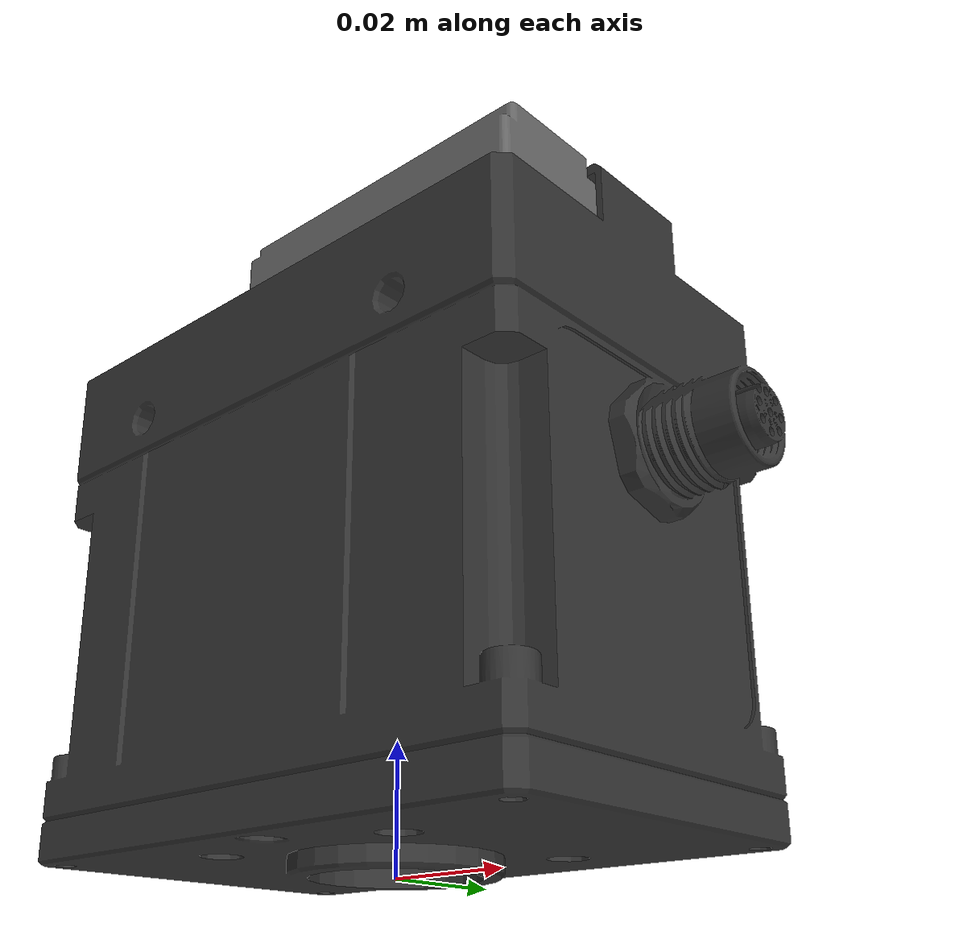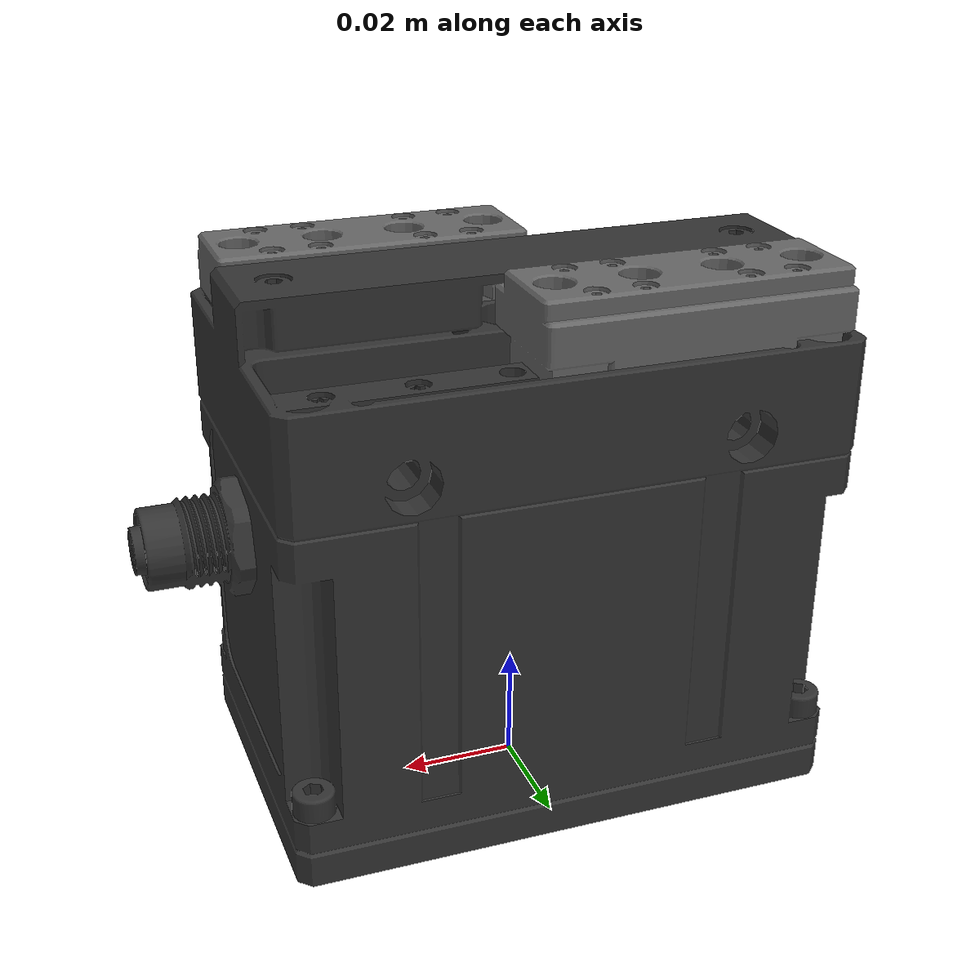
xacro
<?xml version="1.0"?>
<!--
This file shows how to import, instanciate and connect the sensor model to a given link
-->
<robot name="pgi140_example" xmlns:xacro="http://ros.org/wiki/xacro">
  <!--Import macro for left arm gripper-->
  <xacro:include filename="$(find pgi140)/urdf/pgi140.urdf.xacro" />

  <!--Base frame for reference-->
  <link name="world" />

  <xacro:pgi140 parent="world" prefix="">
		<origin xyz="0 0 0" rpy="0 0 0"/>
	</xacro:pgi140>

</robot>

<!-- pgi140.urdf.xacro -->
<robot xmlns:xacro="http://ros.org/wiki/xacro" name="pgi140">
    <xacro:macro name="pgi140" params="parent prefix *origin">

        <!-- joint connct to robot -->
        <joint name="${prefix}pgi_fix" type="fixed">
                <xacro:insert_block name="origin" />
                <parent link="${parent}" />
                <child link="${prefix}origin_link" />
        </joint>

        <!-- gripper body -->
        <link name="${prefix}origin_link">
            <inertial>
                <origin xyz="-0.00015465 -2.2241E-05 0.043187" rpy="0 0 0" />
                <mass value="0.44125" />
                <inertia ixx="0.00018709" ixy="-5.2073E-13" ixz="2.8571E-07" iyy="0.00037837" iyz="-1.6755E-08" izz="0.00044482" />
            </inertial>
            <visual>
                <origin xyz="0 0 0" rpy="0 0 0" />
                <geometry>
                    <mesh filename="package://pgi140/meshes/origin_link.STL" />
                </geometry>
                <material name="PGI_Black">
                    <color rgba="0.2 0.2 0.2 1.0" />
                </material>
            </visual>
            <collision>
                <origin xyz="0 0 0" rpy="0 0 0" />
                <geometry>
                    <mesh filename="package://pgi140/meshes/origin_link.STL" />
                </geometry>
            </collision>
        </link>

        <!-- gripper finger1 -->
        <link name="${prefix}finger1_link">
            <inertial>
                <origin xyz="-0.021 -4.1135E-05 -0.0077742" rpy="0 0 0" />
                <mass value="0.01357" />
                <inertia ixx="5.6166E-07" ixy="-8.7508E-14" ixz="-1.278E-13" iyy="2.3543E-06" iyz="8.019E-09" izz="2.7234E-06" />
            </inertial>
            <visual>
                <origin xyz="0 0 0" rpy="0 0 0" />
                <geometry>
                    <mesh filename="package://pgi140/meshes/finger1_link.STL" />
                </geometry>
                <material name="DH_Gray">
                    <color rgba="0.4 0.4 0.4 1.0" />
                </material>
            </visual>
            <collision>
                <origin xyz="0 0 0" rpy="0 0 0" />
                <geometry>
                    <mesh filename="package://pgi140/meshes/finger1_link.STL" />
                </geometry>
            </collision>
        </link>
        <joint name="${prefix}finger1" type="fixed">
            <origin xyz="-0.001 -0.01815 0.0955" rpy="0 0 3.1416" />
            <parent link="${prefix}origin_link" />
            <child link="${prefix}finger1_link" />
            <axis xyz="1 0 0" />
        </joint>

        <!-- gripper finger2 -->
        <link name="${prefix}finger2_link">
            <inertial>
                <origin xyz="-0.021 -4.1135E-05 -0.0077742" rpy="0 0 0" />
                <mass value="0.01357" />
                <inertia ixx="5.6166E-07" ixy="-8.7508E-14" ixz="-1.278E-13" iyy="2.3543E-06" iyz="8.019E-09" izz="2.7234E-06" />
            </inertial>
            <visual>
                <origin xyz="0 0 0" rpy="0 0 0" />
                <geometry>
                    <mesh filename="package://pgi140/meshes/finger2_link.STL" />
                </geometry>
                <material name="DH_Gray">
                </material>
            </visual>
            <collision>
                <origin xyz="0 0 0" rpy="0 0 0" />
                <geometry>
                    <mesh filename="package://pgi140/meshes/finger2_link.STL" />
                </geometry>
            </collision>
        </link>
        <joint name="${prefix}finger2" type="fixed">
            <origin xyz="0.001 0.01815 0.0955" rpy="0 0 0" />
            <parent link="${prefix}origin_link" />
            <child link="${prefix}finger2_link" />
            <axis xyz="1 0 0" />
        </joint>

    </xacro:macro>
</robot>
